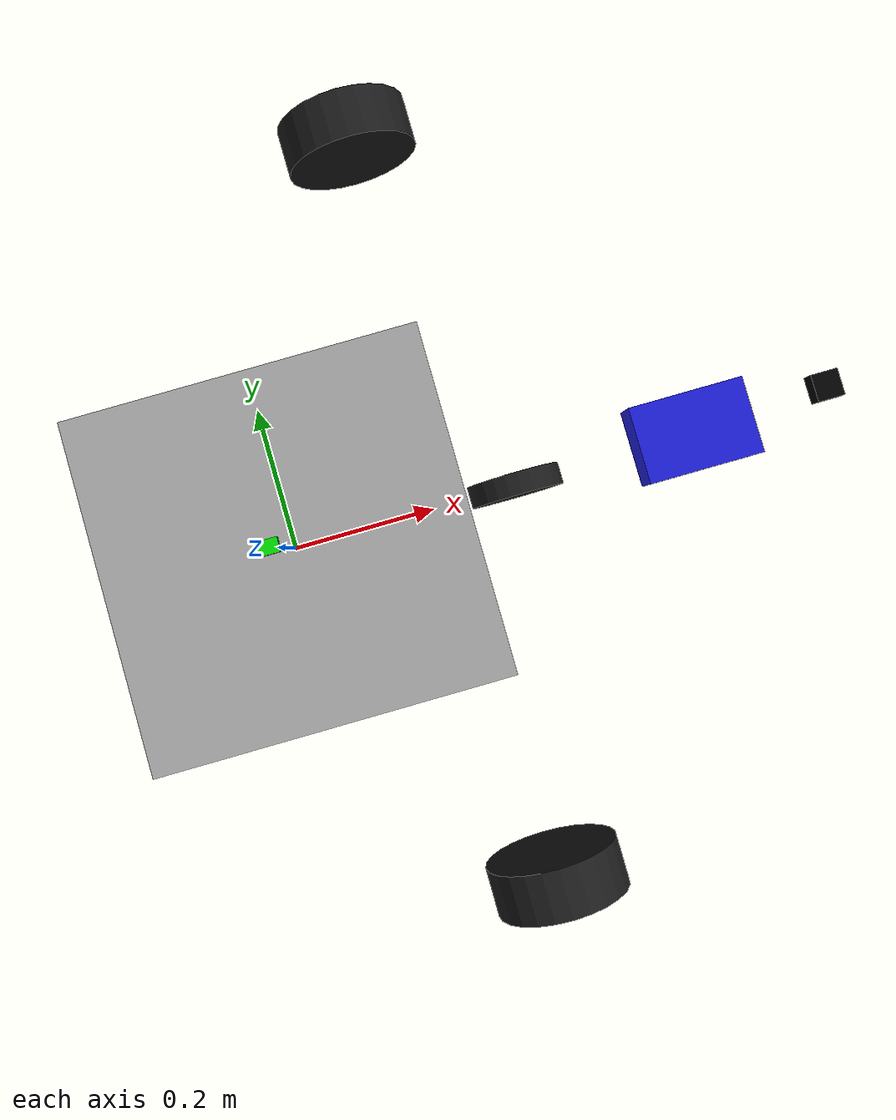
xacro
<?xml version="1.0"?>
<robot name="roover" xmlns:xacro="http://ros.org/wiki/xacro">

  <!-- Hoofdchassis -->
  <link name="base_link">
    <visual>
      <geometry>
        <box size="0.484 0.475 0.09"/> <!-- 484 x 475 x 90 mm -->
      </geometry>
      <origin xyz="0 0 0.07" rpy="0 0 0"/> <!-- hoogte midden chassis -->
      <material name="gray">
        <color rgba="0.6 0.6 0.6 1.0"/>
      </material>
    </visual>
    <collision>
      <geometry>
        <box size="0.484 0.475 0.09"/>
      </geometry>
      <origin xyz="0 0 0.07" rpy="0 0 0"/>
    </collision>
  </link>

  <!-- Linker wiel -->
  <link name="wheel_left">
    <visual>
      <geometry>
        <cylinder radius="0.0825" length="0.06"/> <!-- Ø165mm breedte 60mm -->
      </geometry>
      <origin xyz="0.109 0.2375 0.0825" rpy="1.5708 0 0"/> <!-- positie afgeleid -->
      <material name="black">
        <color rgba="0.1 0.1 0.1 1.0"/>
      </material>
    </visual>
  </link>

  <joint name="left_wheel_joint" type="continuous">
    <parent link="base_link"/>
    <child link="wheel_left"/>
    <origin xyz="0.109 0.2375 0.0825" rpy="0 0 0"/>
    <axis xyz="0 1 0"/> <!-- draai-as over Y -->
  </joint>

  <!-- Rechter wiel -->
  <link name="wheel_right">
    <visual>
      <geometry>
        <cylinder radius="0.0825" length="0.06"/>
      </geometry>
      <origin xyz="0.109 -0.2375 0.0825" rpy="1.5708 0 0"/>
      <material name="black"/>
    </visual>
  </link>

  <joint name="right_wheel_joint" type="continuous">
    <parent link="base_link"/>
    <child link="wheel_right"/>
    <origin xyz="0.109 -0.2375 0.0825" rpy="0 0 0"/>
    <axis xyz="0 1 0"/> <!-- draai-as over Y -->
  </joint>

  <!-- Voorblokje -->
  <link name="front_block">
    <visual>
      <geometry>
        <box size="0.15 0.10 0.05"/>
      </geometry>
      <origin xyz="0.242 0 0.125" rpy="0 0 0"/> <!-- vooraan, gecentreerd -->
      <material name="blue">
        <color rgba="0.1 0.1 0.8 1.0"/>
      </material>
    </visual>
  </link>

  <joint name="front_joint" type="fixed">
    <parent link="base_link"/>
    <child link="front_block"/>
    <origin xyz="0.3 0 0.0" rpy="0 0 0"/> <!-- positie tov base_link -->
  </joint>

  <!-- Castor wiel -->
  <link name="castor_wheel">
    <visual>
      <geometry>
        <cylinder radius="0.065" length="0.03"/> <!-- Ø130 mm, breedte 30mm -->
      </geometry>
      <origin xyz="0.317 0 0.065" rpy="1.5708 0 0"/> <!-- onder het blokje -->
      <material name="black"/>
    </visual>
  </link>

  <joint name="castor_joint" type="continuous"> <!-- of 'fixed' -->
    <parent link="base_link"/>
    <child  link="castor_wheel"/>
    <origin xyz="0 0 -0.05" rpy="0 0 0"/>  <!-- pas aan -->
    <axis xyz="0 0 1"/>
  </joint>

  <!-- GPS module -->
  <link name="gps_link">
    <visual>
      <geometry>
        <box size="0.03 0.03 0.02"/> <!-- 30 x 30 x 20 mm -->
      </geometry>
      <origin xyz="0.317 0 0.17" rpy="0 0 0"/> <!-- vooraan, gecentreerd, bovenkant voorblokje = 170 mm -->
      <material name="black">
        <color rgba="0.0 0.0 0.0 1.0"/>
      </material>
    </visual>
  </link>

  <!-- Joint: GPS vast op base_link -->
  <joint name="gps_joint" type="fixed">
    <parent link="base_link"/>
    <child link="gps_link"/>
    <origin xyz="0.317 0 0.17" rpy="0 0 0"/>
  </joint>

  <!-- IMU module -->
  <link name="imu_link">
    <visual>
      <geometry>
        <box size="0.025 0.018 0.01"/> <!-- 25 x 18 x 10 mm -->
      </geometry>
      <origin xyz="0.0 0.0 0.14" rpy="0 0 0"/> <!-- bovenop chassis (90 mm hoog, dus +0.14m) -->
      <material name="green">
        <color rgba="0.0 0.8 0.0 1.0"/>
      </material>
    </visual>
  </link>

  <!-- Joint: IMU vast op chassis -->
  <joint name="imu_joint" type="fixed">
    <parent link="base_link"/>
    <child link="imu_link"/>
    <origin xyz="0.0 0.0 0.14" rpy="0 0 0"/>
  </joint>
</robot>
